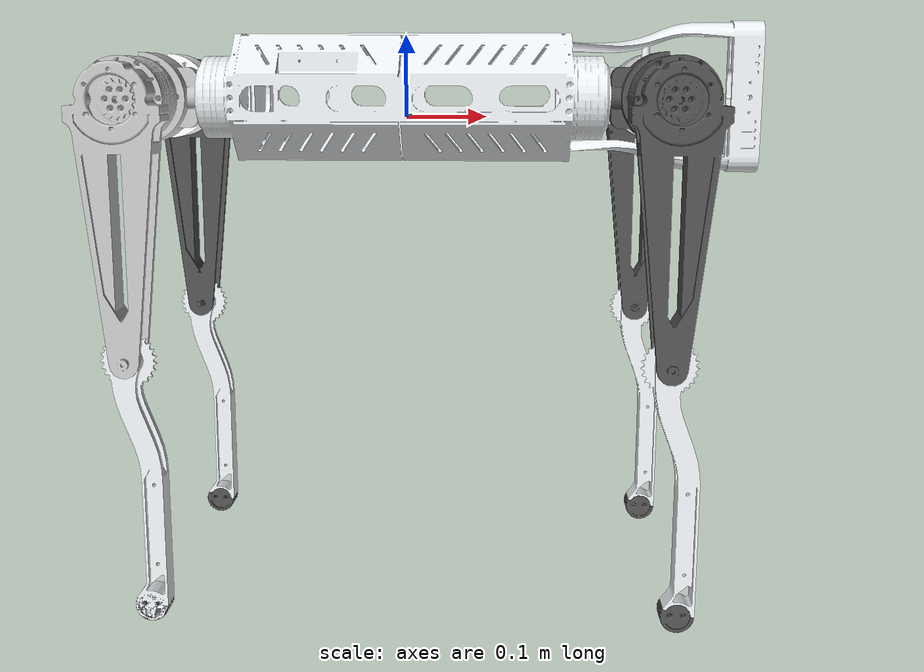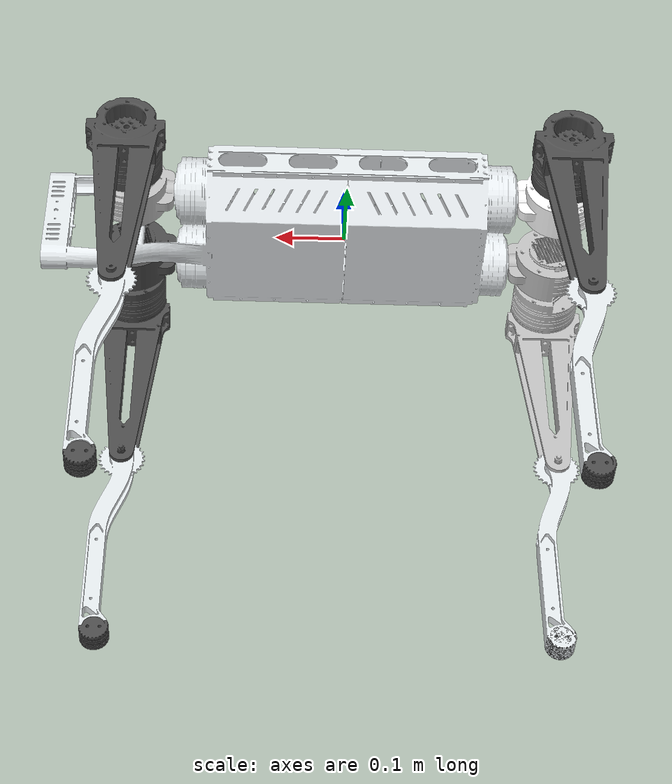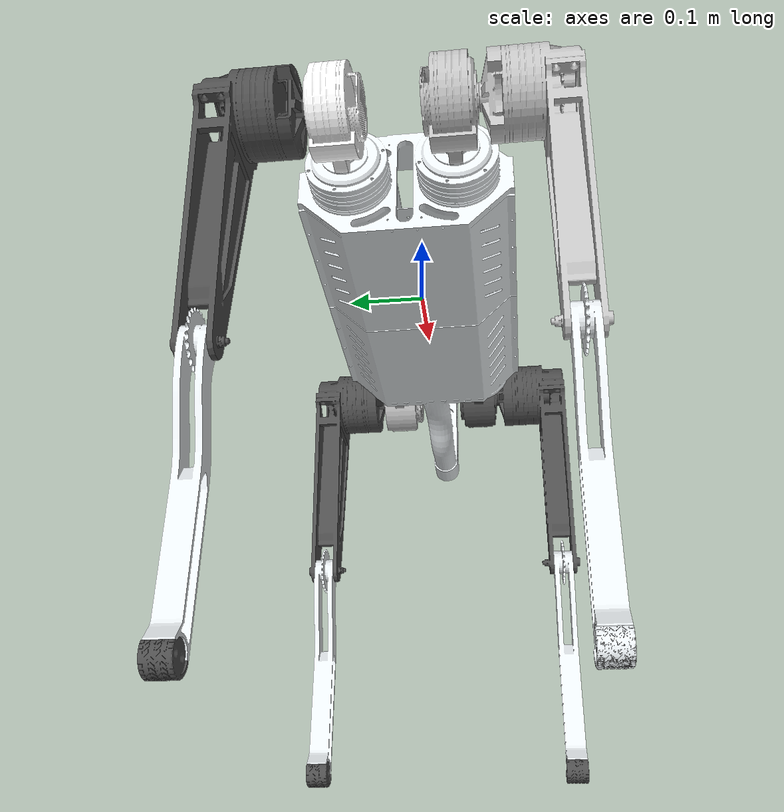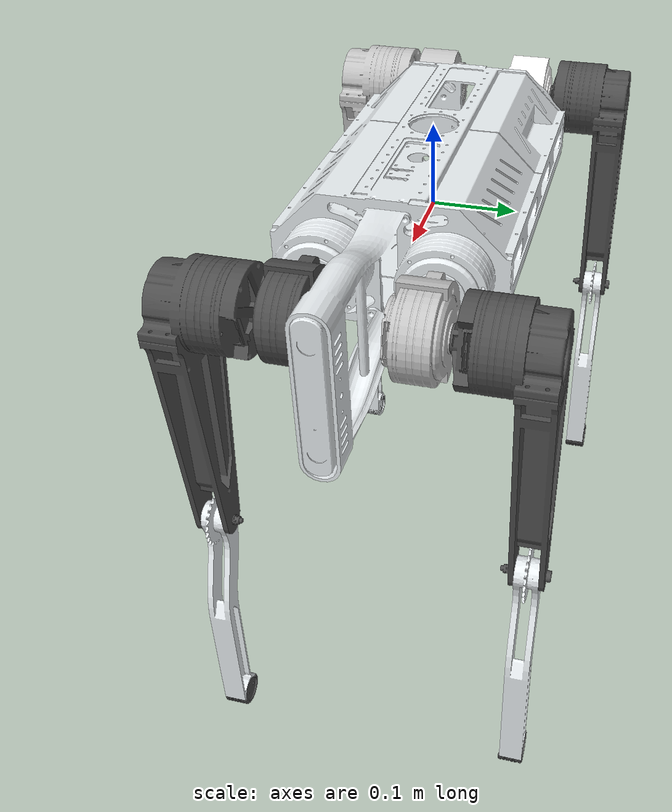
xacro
<?xml version="1.0"?>
<robot xmlns:xacro="http://ros.org/wiki/xacro" name="scotty_robot">

  <!-- Include modular parts -->
  <xacro:include filename="$(find scotty_description)/urdf/base.urdf.xacro" />
  <xacro:include filename="$(find scotty_description)/urdf/sensors.xacro" />
   <xacro:include filename="$(find scotty_description)/urdf/transmissions.xacro" />
   <xacro:include filename="$(find scotty_description)/urdf/legs.xacro" />

  <!-- Invoke parts -->
  <xacro:base/>
  <xacro:sensors/>
  <xacro:transmissions/>
  <xacro:legs/>

</robot>

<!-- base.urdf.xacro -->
<robot xmlns:xacro="http://ros.org/wiki/xacro">
 <xacro:macro name="base">

  <link name="base_link">
    <visual>
      <origin rpy="0 0 0" xyz="0 0 0"/>
      <geometry>
        <box size="0.001 0.001 0.001"/>
      </geometry>
    </visual>
  </link>
  <joint name="floating_base_link" type="fixed">
    <origin rpy="0 0 0" xyz="0 0 0"/>
    <parent link="base_link"/>
    <child link="trunk"/>
  </joint>

  <!-- Include SolidWorks-generated URDF -->
  <xacro:include filename="$(find scotty_description)/urdf/scotty_description.urdf" />

 </xacro:macro>
</robot>

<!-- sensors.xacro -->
<robot xmlns:xacro="http://ros.org/wiki/xacro">
  <xacro:macro name="sensors">
    <!-- IMU Link -->
    <link name="imu_link">
        <inertial>
            <mass value="0.001"/>
            <origin xyz="0 0 0" rpy="0 0 0"/>
            <inertia ixx="1e-09" ixy="0.0" ixz="0.0" iyy="1e-09" iyz="0.0" izz="1e-09"/>
        </inertial>
    </link>

    <!-- IMU Joint -->
    <joint name="imu_joint" type="fixed">
        <parent link="base_link"/>
        <child link="imu_link"/>
    </joint>

    <!-- Gazebo Plugin for IMU -->
    <gazebo>
        <plugin name="imu_controller" filename="libhector_gazebo_ros_imu.so">
            <updateRate>50.0</updateRate>
            <bodyName>imu_link</bodyName>
            <topicName>imu/data</topicName>
            <accelDrift>0.005 0.005 0.005</accelDrift>
            <accelGaussianNoise>0.005 0.005 0.005</accelGaussianNoise>
            <rateDrift>0.005 0.005 0.005 </rateDrift>
            <rateGaussianNoise>0.005 0.005 0.005 </rateGaussianNoise>
            <headingDrift>0.005</headingDrift>
            <headingGaussianNoise>0.005</headingGaussianNoise>
        </plugin>
    </gazebo>

    <!-- ros_control plugin -->

    <gazebo>
      <plugin name="p3d_base_controller" filename="libgazebo_ros_p3d.so">
            <alwaysOn>true</alwaysOn>
            <updateRate>10.0</updateRate>
            <bodyName>base_link</bodyName>
            <topicName>odom/ground_truth</topicName>
            <gaussianNoise>0.01</gaussianNoise>
            <frameName>world</frameName>
            <xyzOffsets>0 0 0</xyzOffsets>
            <rpyOffsets>0 0 0</rpyOffsets>
        </plugin>
    </gazebo>

    <gazebo>
        <plugin name="gazebo_ros_control" filename="libgazebo_ros_control.so">
            <legacyModeNS>true</legacyModeNS>
        </plugin>
    </gazebo>

  </xacro:macro>
</robot>

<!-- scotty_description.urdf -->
<robot
  name="scotty_description">
  <link
    name="trunk">
    <inertial>
      <origin
        xyz="0 0 0.02"
        rpy="0 0 0" />
      <mass
        value="6.03" />
      <inertia
        ixx="0.04"
        ixy="0"
        ixz="0"
        iyy="0.24"
        iyz="0"
        izz="0.27" />
    </inertial>
    <visual>
      <origin
        xyz="0 0 0"
        rpy="0 0 0" />
      <geometry>
        <mesh
          filename="package://scotty_description/meshes/base_link.STL" />
      </geometry>
      <material
        name="">
        <color
          rgba="0.89804 0.91765 0.92941 1" />
      </material>
    </visual>
    <collision>
      <origin
        xyz="0 0 0"
        rpy="0 0 0" />
      <geometry>
        <mesh
          filename="package://scotty_description/meshes/base_link.STL" />
      </geometry>
    </collision>
  </link>
  <link
    name="abad_FR_link">
    <inertial>
      <origin
        xyz="0.06 0 0"
        rpy="0 0 0" />
      <mass
        value="1.03" />
      <inertia
        ixx="0"
        ixy="0"
        ixz="0"
        iyy="0"
        iyz="0"
        izz="0" />
    </inertial>
    <visual>
      <origin
        xyz="0 0 0"
        rpy="0 0 0" />
      <geometry>
        <mesh
          filename="package://scotty_description/meshes/abad_FR_link.STL" />
      </geometry>
      <material
        name="">
        <color
          rgba="0.29804 0.29804 0.29804 1" />
      </material>
    </visual>
    <collision>
      <origin
        xyz="0 0 0"
        rpy="0 0 0" />
      <geometry>
        <mesh
          filename="package://scotty_description/meshes/abad_FR_link.STL" />
      </geometry>
    </collision>
  </link>
  <joint
    name="abad_FR_joint"
    type="revolute">
    <origin
      xyz="0.2485 -0.065 0.025"
      rpy="0 0 0" />
    <parent
      link="base_link" />
    <child
      link="abad_FR_link" />
    <axis
      xyz="1 0 0" />
    <limit
      lower="-0.65"
      upper="0.65"
      effort="50"
      velocity="25" />
    <dynamics damping="0.2" friction="0.8"/>
  </joint>
  <link
    name="hip_FR_link">
    <inertial>
      <origin
        xyz="0 -0.06 -0.04"
        rpy="0 0 0" />
      <mass
        value="1.74" />
      <inertia
        ixx="0.01"
        ixy="0"
        ixz="0"
        iyy="0.01"
        iyz="0"
        izz="0" />
    </inertial>
    <visual>
      <origin
        xyz="0 0 0"
        rpy="0 0 0" />
      <geometry>
        <mesh
          filename="package://scotty_description/meshes/hip_FR_link.STL" />
      </geometry>
      <material
        name="">
        <color
          rgba="0.29804 0.29804 0.29804 1" />
      </material>
    </visual>
    <collision>
      <origin
        xyz="0 0 0"
        rpy="0 0 0" />
      <geometry>
        <mesh
          filename="package://scotty_description/meshes/hip_FR_link.STL" />
      </geometry>
    </collision>
  </link>
  <joint
    name="hip_FR_joint"
    type="revolute">
    <origin
      xyz="0.065 -0.03 0"
      rpy="0 0 0" />
    <parent
      link="abad_FR_link" />
    <child
      link="hip_FR_link" />
    <axis
      xyz="0 1 0" />
    <limit
      lower="-1.25"
      upper="1.8"
      effort="50"
      velocity="25" />
    <dynamics damping="0.2" friction="0.8"/>
  </joint>
  <link
    name="knee_FR_link">
    <inertial>
      <origin
        xyz="0.01 0 -0.1"
        rpy="0 0 0" />
      <mass
        value="0.52" />
      <inertia
        ixx="0.01"
        ixy="0"
        ixz="0"
        iyy="0.01"
        iyz="0"
        izz="0" />
    </inertial>
    <visual>
      <origin
        xyz="0 0 0"
        rpy="0 0 0" />
      <geometry>
        <mesh
          filename="package://scotty_description/meshes/knee_FR_link.STL" />
      </geometry>
      <material
        name="">
        <color
          rgba="0.89804 0.91765 0.92941 1" />
      </material>
    </visual>
    <collision>
      <origin
        xyz="0 0 0"
        rpy="0 0 0" />
      <geometry>
        <mesh
          filename="package://scotty_description/meshes/knee_FR_link.STL" />
      </geometry>
    </collision>
  </link>
  <joint
    name="knee_FR_joint"
    type="revolute">
    <origin
      xyz="0 -0.087405 -0.3"
      rpy="0 0 0" />
    <parent
      link="hip_FR_link" />
    <child
      link="knee_FR_link" />
    <axis
      xyz="0 1 0" />
    <limit
      lower="-2.5"
      upper="0"
      effort="50"
      velocity="25" />
    <dynamics damping="0.2" friction="0.8"/>
  </joint>
  <link
    name="foot_FR_link">
    <inertial>
      <origin
        xyz="0 0 0"
        rpy="0 0 0" />
      <mass
        value="0.02" />
      <inertia
        ixx="0"
        ixy="0"
        ixz="0"
        iyy="0"
        iyz="0"
        izz="0" />
    </inertial>
    <visual>
      <origin
        xyz="0 0 0"
        rpy="0 0 0" />
      <geometry>
        <mesh
          filename="package://scotty_description/meshes/foot_FR_link.STL" />
      </geometry>
      <material
        name="">
        <color
          rgba="0.29804 0.29804 0.29804 1" />
      </material>
    </visual>
    <collision>
      <origin
        xyz="0 0 0"
        rpy="0 0 0" />
      <geometry>
        <mesh
          filename="package://scotty_description/meshes/foot_FR_link.STL" />
      </geometry>
    </collision>
  </link>
  <joint
    name="foot_FR_joint"
    type="fixed">
    <origin
      xyz="0.0175 0.001605 -0.3"
      rpy="0 0 0" />
    <parent
      link="knee_FR_link" />
    <child
      link="foot_FR_link" />
    <axis
      xyz="0 0 0" />
    <dynamics damping="0.2" friction="0.8"/>
  </joint>
  <link
    name="abad_FL_link">
    <inertial>
      <origin
        xyz="0.06 0 0"
        rpy="0 0 0" />
      <mass
        value="1.03" />
      <inertia
        ixx="0"
        ixy="0"
        ixz="0"
        iyy="0"
        iyz="0"
        izz="0" />
    </inertial>
    <visual>
      <origin
        xyz="0 0 0"
        rpy="0 0 0" />
      <geometry>
        <mesh
          filename="package://scotty_description/meshes/abad_FL_link.STL" />
      </geometry>
      <material
        name="">
        <color
          rgba="0.75294 0.75294 0.75294 1" />
      </material>
    </visual>
    <collision>
      <origin
        xyz="0 0 0"
        rpy="0 0 0" />
      <geometry>
        <mesh
          filename="package://scotty_description/meshes/abad_FL_link.STL" />
      </geometry>
    </collision>
  </link>
  <joint
    name="abad_FL_joint"
    type="revolute">
    <origin
      xyz="0.2485 0.065 0.025"
      rpy="0 0 0" />
    <parent
      link="base_link" />
    <child
      link="abad_FL_link" />
    <axis
      xyz="1 0 0" />
    <limit
      lower="-0.65"
      upper="0.65"
      effort="50"
      velocity="25" />
    <dynamics damping="0.2" friction="0.8"/>
  </joint>
  <link
    name="hip_FL_link">
    <inertial>
      <origin
        xyz="0 0.06 -0.04"
        rpy="0 0 0" />
      <mass
        value="1.74" />
      <inertia
        ixx="0.01"
        ixy="0"
        ixz="0"
        iyy="0.01"
        iyz="0"
        izz="0" />
    </inertial>
    <visual>
      <origin
        xyz="0 0 0"
        rpy="0 0 0" />
      <geometry>
        <mesh
          filename="package://scotty_description/meshes/hip_FL_link.STL" />
      </geometry>
      <material
        name="">
        <color
          rgba="0.29804 0.29804 0.29804 1" />
      </material>
    </visual>
    <collision>
      <origin
        xyz="0 0 0"
        rpy="0 0 0" />
      <geometry>
        <mesh
          filename="package://scotty_description/meshes/hip_FL_link.STL" />
      </geometry>
    </collision>
  </link>
  <joint
    name="hip_FL_joint"
    type="revolute">
    <origin
      xyz="0.065 0.03 0"
      rpy="0 0 0" />
    <parent
      link="abad_FL_link" />
    <child
      link="hip_FL_link" />
    <axis
      xyz="0 1 0" />
    <limit
      lower="-1.25"
      upper="1.8"
      effort="50"
      velocity="25" />
    <dynamics damping="0.2" friction="0.8"/>
  </joint>
  <link
    name="knee_FL_link">
    <inertial>
      <origin
        xyz="0.01 0 -0.1"
        rpy="0 0 0" />
      <mass
        value="0.52" />
      <inertia
        ixx="0.01"
        ixy="0"
        ixz="0"
        iyy="0.01"
        iyz="0"
        izz="0" />
    </inertial>
    <visual>
      <origin
        xyz="0 0 0"
        rpy="0 0 0" />
      <geometry>
        <mesh
          filename="package://scotty_description/meshes/knee_FL_link.STL" />
      </geometry>
      <material
        name="">
        <color
          rgba="0.89804 0.91765 0.92941 1" />
      </material>
    </visual>
    <collision>
      <origin
        xyz="0 0 0"
        rpy="0 0 0" />
      <geometry>
        <mesh
          filename="package://scotty_description/meshes/knee_FL_link.STL" />
      </geometry>
    </collision>
  </link>
  <joint
    name="knee_FL_joint"
    type="revolute">
    <origin
      xyz="0 0.087405 -0.3"
      rpy="0 0 0" />
    <parent
      link="hip_FL_link" />
    <child
      link="knee_FL_link" />
    <axis
      xyz="0 1 0" />
    <limit
      lower="-2.5"
      upper="0"
      effort="50"
      velocity="25" />
    <dynamics damping="0.2" friction="0.8"/>
  </joint>
  <link
    name="foot_FL_link">
    <inertial>
      <origin
        xyz="0 0 0"
        rpy="0 0 0" />
      <mass
        value="0.02" />
      <inertia
        ixx="0"
        ixy="0"
        ixz="0"
        iyy="0"
        iyz="0"
        izz="0" />
    </inertial>
    <visual>
      <origin
        xyz="0 0 0"
        rpy="0 0 0" />
      <geometry>
        <mesh
          filename="package://scotty_description/meshes/foot_FL_link.STL" />
      </geometry>
      <material
        name="">
        <color
          rgba="0.29804 0.29804 0.29804 1" />
      </material>
    </visual>
    <collision>
      <origin
        xyz="0 0 0"
        rpy="0 0 0" />
      <geometry>
        <mesh
          filename="package://scotty_description/meshes/foot_FL_link.STL" />
      </geometry>
    </collision>
  </link>
  <joint
    name="foot_FL_joint"
    type="fixed">
    <origin
      xyz="0.0175 0.004395 -0.3"
      rpy="0 0 0" />
    <parent
      link="knee_FL_link" />
    <child
      link="foot_FL_link" />
    <axis
      xyz="0 0 0" />
    <dynamics damping="0.2" friction="0.8"/>
  </joint>
  <link
    name="abad_RR_link">
    <inertial>
      <origin
        xyz="-0.06 0 0"
        rpy="0 0 0" />
      <mass
        value="1.03" />
      <inertia
        ixx="0"
        ixy="0"
        ixz="0"
        iyy="0"
        iyz="0"
        izz="0" />
    </inertial>
    <visual>
      <origin
        xyz="0 0 0"
        rpy="0 0 0" />
      <geometry>
        <mesh
          filename="package://scotty_description/meshes/abad_RR_link.STL" />
      </geometry>
      <material
        name="">
        <color
          rgba="0.75294 0.75294 0.75294 1" />
      </material>
    </visual>
    <collision>
      <origin
        xyz="0 0 0"
        rpy="0 0 0" />
      <geometry>
        <mesh
          filename="package://scotty_description/meshes/abad_RR_link.STL" />
      </geometry>
    </collision>
  </link>
  <joint
    name="abad_RR_joint"
    type="revolute">
    <origin
      xyz="-0.2485 -0.065 0.025"
      rpy="0 0 0" />
    <parent
      link="base_link" />
    <child
      link="abad_RR_link" />
    <axis
      xyz="1 0 0" />
    <limit
      lower="-0.65"
      upper="0.65"
      effort="50"
      velocity="25" />
    <dynamics damping="0.2" friction="0.8"/>
  </joint>
  <link
    name="hip_RR_link">
    <inertial>
      <origin
        xyz="0 -0.06 -0.04"
        rpy="0 0 0" />
      <mass
        value="1.74" />
      <inertia
        ixx="0.01"
        ixy="0"
        ixz="0"
        iyy="0.01"
        iyz="0"
        izz="0" />
    </inertial>
    <visual>
      <origin
        xyz="0 0 0"
        rpy="0 0 0" />
      <geometry>
        <mesh
          filename="package://scotty_description/meshes/hip_RR_link.STL" />
      </geometry>
      <material
        name="">
        <color
          rgba="0.75294 0.75294 0.75294 1" />
      </material>
    </visual>
    <collision>
      <origin
        xyz="0 0 0"
        rpy="0 0 0" />
      <geometry>
        <mesh
          filename="package://scotty_description/meshes/hip_RR_link.STL" />
      </geometry>
    </collision>
  </link>
  <joint
    name="hip_RR_joint"
    type="revolute">
    <origin
      xyz="-0.065 -0.03 0"
      rpy="0 0 0" />
    <parent
      link="abad_RR_link" />
    <child
      link="hip_RR_link" />
    <axis
      xyz="0 1 0" />
    <limit
      lower="-1.25"
      upper="1.8"
      effort="50"
      velocity="25" />
    <dynamics damping="0.2" friction="0.8"/>
  </joint>
  <link
    name="knee_RR_link">
    <inertial>
      <origin
        xyz="0.01 0 -0.1"
        rpy="0 0 0" />
      <mass
        value="0.52" />
      <inertia
        ixx="0.01"
        ixy="0"
        ixz="0"
        iyy="0.01"
        iyz="0"
        izz="0" />
    </inertial>
    <visual>
      <origin
        xyz="0 0 0"
        rpy="0 0 0" />
      <geometry>
        <mesh
          filename="package://scotty_description/meshes/knee_RR_link.STL" />
      </geometry>
      <material
        name="">
        <color
          rgba="0.89804 0.91765 0.92941 1" />
      </material>
    </visual>
    <collision>
      <origin
        xyz="0 0 0"
        rpy="0 0 0" />
      <geometry>
        <mesh
          filename="package://scotty_description/meshes/knee_RR_link.STL" />
      </geometry>
    </collision>
  </link>
  <joint
    name="knee_RR_joint"
    type="revolute">
    <origin
      xyz="0 -0.087405 -0.3"
      rpy="0 0 0" />
    <parent
      link="hip_RR_link" />
    <child
      link="knee_RR_link" />
    <axis
      xyz="0 1 0" />
    <limit
      lower="-2.5"
      upper="0"
      effort="50"
      velocity="25" />
    <dynamics damping="0.2" friction="0.8"/>
  </joint>
  <link
    name="foot_RR_link">
    <inertial>
      <origin
        xyz="0 0 0"
        rpy="0 0 0" />
      <mass
        value="0.02" />
      <inertia
        ixx="0"
        ixy="0"
        ixz="0"
        iyy="0"
        iyz="0"
        izz="0" />
    </inertial>
    <visual>
      <origin
        xyz="0 0 0"
        rpy="0 0 0" />
      <geometry>
        <mesh
          filename="package://scotty_description/meshes/foot_RR_link.STL" />
      </geometry>
      <material
        name="">
        <color
          rgba="0.29804 0.29804 0.29804 1" />
      </material>
    </visual>
    <collision>
      <origin
        xyz="0 0 0"
        rpy="0 0 0" />
      <geometry>
        <mesh
          filename="package://scotty_description/meshes/foot_RR_link.STL" />
      </geometry>
    </collision>
  </link>
  <joint
    name="foot_RR_joint"
    type="fixed">
    <origin
      xyz="0.0175 0.001605 -0.3"
      rpy="0 0 0" />
    <parent
      link="knee_RR_link" />
    <child
      link="foot_RR_link" />
    <axis
      xyz="0 0 0" />
    <dynamics damping="0.2" friction="0.8"/>
  </joint>
  <link
    name="abad_RL_link">
    <inertial>
      <origin
        xyz="-0.06 0 0"
        rpy="0 0 0" />
      <mass
        value="1.03" />
      <inertia
        ixx="0"
        ixy="0"
        ixz="0"
        iyy="0"
        iyz="0"
        izz="0" />
    </inertial>
    <visual>
      <origin
        xyz="0 0 0"
        rpy="0 0 0" />
      <geometry>
        <mesh
          filename="package://scotty_description/meshes/abad_RL_link.STL" />
      </geometry>
      <material
        name="">
        <color
          rgba="1 1 1 1" />
      </material>
    </visual>
    <collision>
      <origin
        xyz="0 0 0"
        rpy="0 0 0" />
      <geometry>
        <mesh
          filename="package://scotty_description/meshes/abad_RL_link.STL" />
      </geometry>
    </collision>
  </link>
  <joint
    name="abad_RL_joint"
    type="revolute">
    <origin
      xyz="-0.2485 0.065 0.025"
      rpy="0 0 0" />
    <parent
      link="base_link" />
    <child
      link="abad_RL_link" />
    <axis
      xyz="1 0 0" />
    <limit
      lower="-0.65"
      upper="0.65"
      effort="50"
      velocity="25" />
    <dynamics damping="0.2" friction="0.8"/>
  </joint>
  <link
    name="hip_RL_link">
    <inertial>
      <origin
        xyz="0 0.06 -0.04"
        rpy="0 0 0" />
      <mass
        value="1.74" />
      <inertia
        ixx="0.01"
        ixy="0"
        ixz="0"
        iyy="0.01"
        iyz="0"
        izz="0" />
    </inertial>
    <visual>
      <origin
        xyz="0 0 0"
        rpy="0 0 0" />
      <geometry>
        <mesh
          filename="package://scotty_description/meshes/hip_RL_link.STL" />
      </geometry>
      <material
        name="">
        <color
          rgba="0.29804 0.29804 0.29804 1" />
      </material>
    </visual>
    <collision>
      <origin
        xyz="0 0 0"
        rpy="0 0 0" />
      <geometry>
        <mesh
          filename="package://scotty_description/meshes/hip_RL_link.STL" />
      </geometry>
    </collision>
  </link>
  <joint
    name="hip_RL_joint"
    type="revolute">
    <origin
      xyz="-0.065 0.03 0"
      rpy="0 0 0" />
    <parent
      link="abad_RL_link" />
    <child
      link="hip_RL_link" />
    <axis
      xyz="0 1 0" />
    <limit
      lower="-1.25"
      upper="1.8"
      effort="50"
      velocity="25" />
    <dynamics damping="0.2" friction="0.8"/>
  </joint>
  <link
    name="knee_RL_link">
    <inertial>
      <origin
        xyz="0.01 0 -0.1"
        rpy="0 0 0" />
      <mass
        value="0.52" />
      <inertia
        ixx="0.01"
        ixy="0"
        ixz="0"
        iyy="0.01"
        iyz="0"
        izz="0" />
    </inertial>
    <visual>
      <origin
        xyz="0 0 0"
        rpy="0 0 0" />
      <geometry>
        <mesh
          filename="package://scotty_description/meshes/knee_RL_link.STL" />
      </geometry>
      <material
        name="">
        <color
          rgba="0.89804 0.91765 0.92941 1" />
      </material>
    </visual>
    <collision>
      <origin
        xyz="0 0 0"
        rpy="0 0 0" />
      <geometry>
        <mesh
          filename="package://scotty_description/meshes/knee_RL_link.STL" />
      </geometry>
    </collision>
  </link>
  <joint
    name="knee_RL_joint"
    type="revolute">
    <origin
      xyz="0 0.087405 -0.3"
      rpy="0 0 0" />
    <parent
      link="hip_RL_link" />
    <child
      link="knee_RL_link" />
    <axis
      xyz="0 1 0" />
    <limit
      lower="-2.5"
      upper="0"
      effort="50"
      velocity="25" />
    <dynamics damping="0.2" friction="0.8"/>
  </joint>
  <link
    name="foot_RL_link">
    <inertial>
      <origin
        xyz="0 0 0"
        rpy="0 0 0" />
      <mass
        value="0.02" />
      <inertia
        ixx="0"
        ixy="0"
        ixz="0"
        iyy="0"
        iyz="0"
        izz="0" />
    </inertial>
    <visual>
      <origin
        xyz="0 0 0"
        rpy="0 0 0" />
      <geometry>
        <mesh
          filename="package://scotty_description/meshes/foot_RL_link.STL" />
      </geometry>
      <material
        name="">
        <color
          rgba="0.29804 0.29804 0.29804 1" />
      </material>
    </visual>
    <collision>
      <origin
        xyz="0 0 0"
        rpy="0 0 0" />
      <geometry>
        <mesh
          filename="package://scotty_description/meshes/foot_RL_link.STL" />
      </geometry>
    </collision>
  </link>
  <joint
    name="foot_RL_joint"
    type="fixed">
    <origin
      xyz="0.0175 0.004395 -0.3"
      rpy="0 0 0" />
    <parent
      link="knee_RL_link" />
    <child
      link="foot_RL_link" />
    <axis
      xyz="0 0 0" />
    <dynamics damping="0.2" friction="0.8"/>
  </joint>
</robot>
